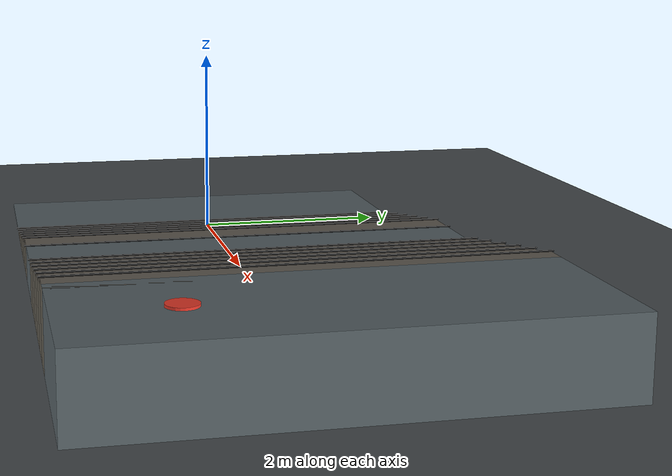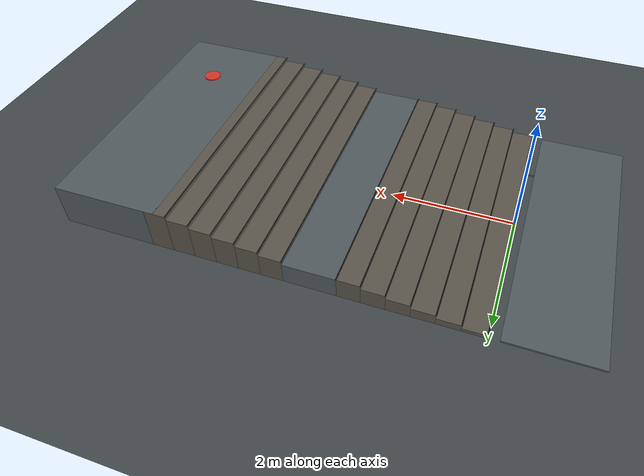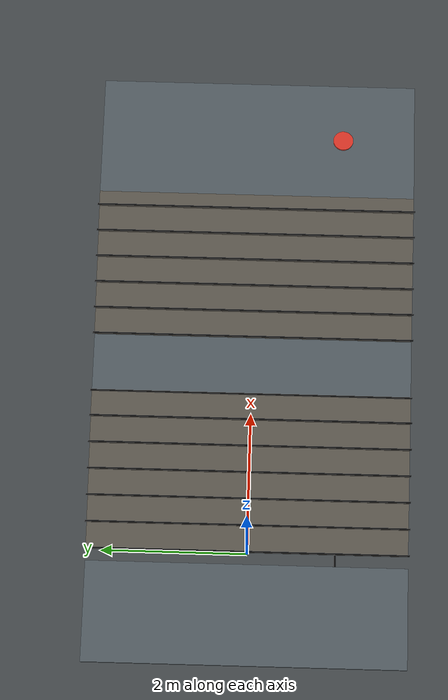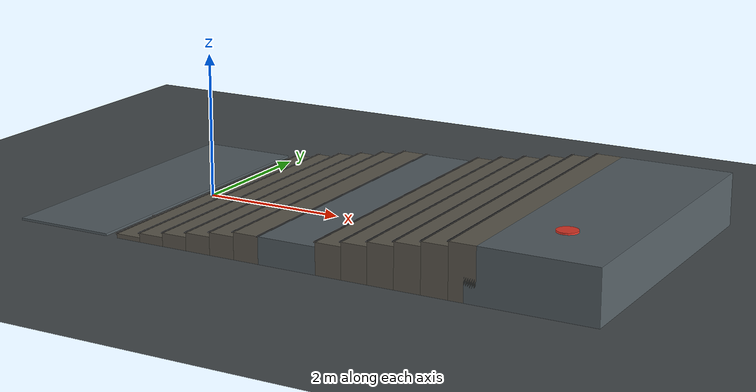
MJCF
<mujoco model="thunderv4_stair_showcase">
  <compiler angle="radian" autolimits="true"/>
  <option gravity="0 0 -9.81" timestep="0.002" integrator="RK4"/>

  <visual>
    <global offwidth="1920" offheight="1080"/>
    <headlight ambient="0.34 0.34 0.34" diffuse="0.72 0.70 0.66" specular="0.20 0.20 0.20"/>
    <quality shadowsize="4096"/>
    <map znear="0.01" zfar="80"/>
    <rgba haze="0.78 0.88 0.96 1"/>
  </visual>

  <asset>
    <material name="stairs_floor" rgba="0.28 0.30 0.31 1" reflectance="0.02"/>
    <material name="stairs_step" rgba="0.38 0.36 0.32 1" reflectance="0.02"/>
    <material name="stairs_landing" rgba="0.34 0.38 0.40 1" reflectance="0.02"/>
    <material name="stairs_start" rgba="0.15 0.75 0.30 1" reflectance="0.02"/>
    <material name="stairs_goal" rgba="0.90 0.22 0.16 1" reflectance="0.02"/>
    <material name="stairs_reference" rgba="0.04 0.04 0.04 1" reflectance="0.01"/>
  </asset>

  <worldbody>
    <body name="robot_placeholder" pos="-1.00 0 0.55"/>

    <light name="key" pos="-3.5 -4.0 7.0" dir="0.35 0.45 -1"
           directional="true" diffuse="0.95 0.92 0.86" specular="0.25 0.25 0.25"/>
    <light name="fill" pos="5.0 3.0 4.0" dir="-0.65 -0.35 -1"
           directional="true" diffuse="0.34 0.39 0.44" specular="0.05 0.05 0.05"/>

    <geom name="floor" type="plane" size="30 10 0.1"
          rgba="0.28 0.30 0.31 1" material="stairs_floor" conaffinity="1" condim="3" friction="1.0 0.5 0.5"/>

    <geom name="start_marker" type="cylinder" size="0.14 0.012"
          pos="-1.00 -1.20 0.014" material="stairs_start"
          contype="0" conaffinity="0"/>
    <geom name="goal_marker" type="cylinder" size="0.14 0.012"
          pos="5.85 -1.20 0.734" material="stairs_goal"
          contype="0" conaffinity="0"/>
    <geom name="reference_line" type="box" size="3.6 0.015 0.006"
          pos="2.45 -1.20 0.010" rgba="0.04 0.04 0.04 1" material="stairs_reference"
          contype="0" conaffinity="0"/>

    <geom name="lower_landing" type="box" size="0.70 2.20 0.015"
          pos="-0.85 0 0.015" rgba="0.34 0.38 0.40 1" material="stairs_landing"
          conaffinity="1" condim="3" friction="1.0 0.5 0.5"/>

    <geom name="step_01" type="box" size="0.18 2.20 0.030" pos="0.20 0 0.030" rgba="0.38 0.36 0.32 1" material="stairs_step" conaffinity="1" condim="3" friction="1.0 0.5 0.5"/>
    <geom name="step_02" type="box" size="0.18 2.20 0.060" pos="0.56 0 0.060" rgba="0.38 0.36 0.32 1" material="stairs_step" conaffinity="1" condim="3" friction="1.0 0.5 0.5"/>
    <geom name="step_03" type="box" size="0.18 2.20 0.090" pos="0.92 0 0.090" rgba="0.38 0.36 0.32 1" material="stairs_step" conaffinity="1" condim="3" friction="1.0 0.5 0.5"/>
    <geom name="step_04" type="box" size="0.18 2.20 0.120" pos="1.28 0 0.120" rgba="0.38 0.36 0.32 1" material="stairs_step" conaffinity="1" condim="3" friction="1.0 0.5 0.5"/>
    <geom name="step_05" type="box" size="0.18 2.20 0.150" pos="1.64 0 0.150" rgba="0.38 0.36 0.32 1" material="stairs_step" conaffinity="1" condim="3" friction="1.0 0.5 0.5"/>
    <geom name="step_06" type="box" size="0.18 2.20 0.180" pos="2.00 0 0.180" rgba="0.38 0.36 0.32 1" material="stairs_step" conaffinity="1" condim="3" friction="1.0 0.5 0.5"/>

    <geom name="mid_landing" type="box" size="0.42 2.20 0.180"
          pos="2.60 0 0.180" rgba="0.34 0.38 0.40 1" material="stairs_landing"
          conaffinity="1" condim="3" friction="1.0 0.5 0.5"/>

    <geom name="step_07" type="box" size="0.18 2.20 0.210" pos="3.18 0 0.210" rgba="0.38 0.36 0.32 1" material="stairs_step" conaffinity="1" condim="3" friction="1.0 0.5 0.5"/>
    <geom name="step_08" type="box" size="0.18 2.20 0.240" pos="3.54 0 0.240" rgba="0.38 0.36 0.32 1" material="stairs_step" conaffinity="1" condim="3" friction="1.0 0.5 0.5"/>
    <geom name="step_09" type="box" size="0.18 2.20 0.270" pos="3.90 0 0.270" rgba="0.38 0.36 0.32 1" material="stairs_step" conaffinity="1" condim="3" friction="1.0 0.5 0.5"/>
    <geom name="step_10" type="box" size="0.18 2.20 0.300" pos="4.26 0 0.300" rgba="0.38 0.36 0.32 1" material="stairs_step" conaffinity="1" condim="3" friction="1.0 0.5 0.5"/>
    <geom name="step_11" type="box" size="0.18 2.20 0.330" pos="4.62 0 0.330" rgba="0.38 0.36 0.32 1" material="stairs_step" conaffinity="1" condim="3" friction="1.0 0.5 0.5"/>
    <geom name="step_12" type="box" size="0.18 2.20 0.360" pos="4.98 0 0.360" rgba="0.38 0.36 0.32 1" material="stairs_step" conaffinity="1" condim="3" friction="1.0 0.5 0.5"/>

    <geom name="upper_landing" type="box" size="0.85 2.20 0.360"
          pos="5.85 0 0.360" rgba="0.34 0.38 0.40 1" material="stairs_landing"
          conaffinity="1" condim="3" friction="1.0 0.5 0.5"/>

    <geom name="edge_01" type="box" size="0.012 2.22 0.006" pos="0.02 0 0.066" rgba="0.03 0.03 0.03 1" contype="0" conaffinity="0"/>
    <geom name="edge_02" type="box" size="0.012 2.22 0.006" pos="0.38 0 0.126" rgba="0.03 0.03 0.03 1" contype="0" conaffinity="0"/>
    <geom name="edge_03" type="box" size="0.012 2.22 0.006" pos="0.74 0 0.186" rgba="0.03 0.03 0.03 1" contype="0" conaffinity="0"/>
    <geom name="edge_04" type="box" size="0.012 2.22 0.006" pos="1.10 0 0.246" rgba="0.03 0.03 0.03 1" contype="0" conaffinity="0"/>
    <geom name="edge_05" type="box" size="0.012 2.22 0.006" pos="1.46 0 0.306" rgba="0.03 0.03 0.03 1" contype="0" conaffinity="0"/>
    <geom name="edge_06" type="box" size="0.012 2.22 0.006" pos="1.82 0 0.366" rgba="0.03 0.03 0.03 1" contype="0" conaffinity="0"/>
    <geom name="edge_mid" type="box" size="0.012 2.22 0.006" pos="2.18 0 0.366" rgba="0.03 0.03 0.03 1" contype="0" conaffinity="0"/>
    <geom name="edge_07" type="box" size="0.012 2.22 0.006" pos="3.00 0 0.426" rgba="0.03 0.03 0.03 1" contype="0" conaffinity="0"/>
    <geom name="edge_08" type="box" size="0.012 2.22 0.006" pos="3.36 0 0.486" rgba="0.03 0.03 0.03 1" contype="0" conaffinity="0"/>
    <geom name="edge_09" type="box" size="0.012 2.22 0.006" pos="3.72 0 0.546" rgba="0.03 0.03 0.03 1" contype="0" conaffinity="0"/>
    <geom name="edge_10" type="box" size="0.012 2.22 0.006" pos="4.08 0 0.606" rgba="0.03 0.03 0.03 1" contype="0" conaffinity="0"/>
    <geom name="edge_11" type="box" size="0.012 2.22 0.006" pos="4.44 0 0.666" rgba="0.03 0.03 0.03 1" contype="0" conaffinity="0"/>
    <geom name="edge_12" type="box" size="0.012 2.22 0.006" pos="4.80 0 0.726" rgba="0.03 0.03 0.03 1" contype="0" conaffinity="0"/>
  </worldbody>
</mujoco>
